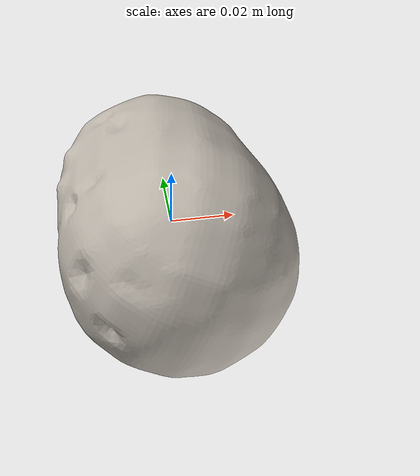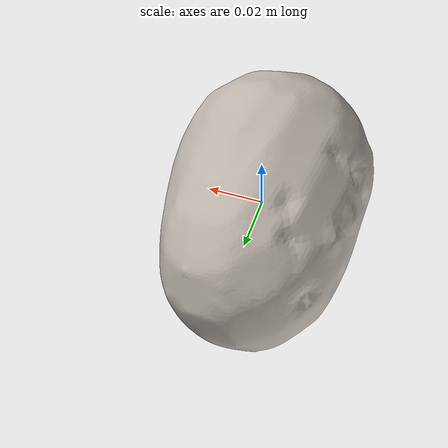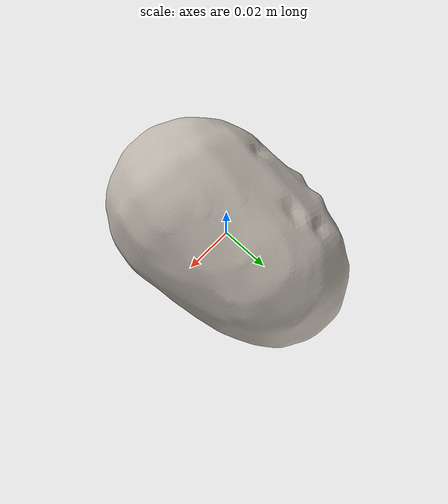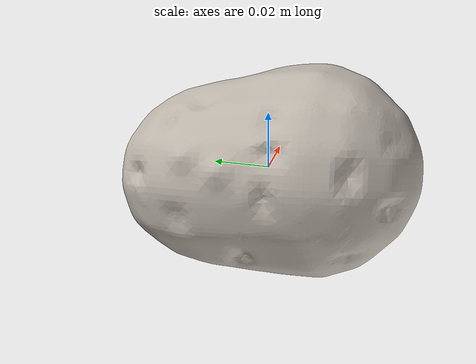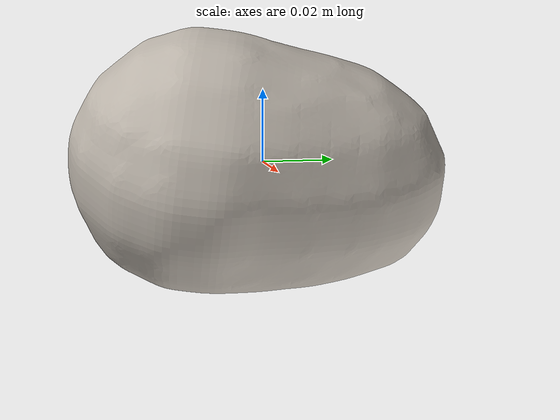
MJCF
<mujoco model="potato_21">
  <asset>
    <mesh file="visual/model_normalized_0.obj" name="model_normalized_0_vis" scale="0.10499999999999997 0.10499999999999997 0.10499999999999997" refquat="0.7071067811865475 0.0 0.0 0.7071067811865476"/>
    <mesh file="collision/model_normalized_collision_22.obj" name="model_normalized_collision_22._coll" scale="0.10499999999999997 0.10499999999999997 0.10499999999999997" refquat="0.7071067811865475 0.0 0.0 0.7071067811865476"/>
    <mesh file="collision/model_normalized_collision_23.obj" name="model_normalized_collision_23._coll" scale="0.10499999999999997 0.10499999999999997 0.10499999999999997" refquat="0.7071067811865475 0.0 0.0 0.7071067811865476"/>
    <mesh file="collision/model_normalized_collision_21.obj" name="model_normalized_collision_21._coll" scale="0.10499999999999997 0.10499999999999997 0.10499999999999997" refquat="0.7071067811865475 0.0 0.0 0.7071067811865476"/>
    <mesh file="collision/model_normalized_collision_20.obj" name="model_normalized_collision_20._coll" scale="0.10499999999999997 0.10499999999999997 0.10499999999999997" refquat="0.7071067811865475 0.0 0.0 0.7071067811865476"/>
    <mesh file="collision/model_normalized_collision_24.obj" name="model_normalized_collision_24._coll" scale="0.10499999999999997 0.10499999999999997 0.10499999999999997" refquat="0.7071067811865475 0.0 0.0 0.7071067811865476"/>
    <mesh file="collision/model_normalized_collision_30.obj" name="model_normalized_collision_30._coll" scale="0.10499999999999997 0.10499999999999997 0.10499999999999997" refquat="0.7071067811865475 0.0 0.0 0.7071067811865476"/>
    <mesh file="collision/model_normalized_collision_18.obj" name="model_normalized_collision_18._coll" scale="0.10499999999999997 0.10499999999999997 0.10499999999999997" refquat="0.7071067811865475 0.0 0.0 0.7071067811865476"/>
    <mesh file="collision/model_normalized_collision_19.obj" name="model_normalized_collision_19._coll" scale="0.10499999999999997 0.10499999999999997 0.10499999999999997" refquat="0.7071067811865475 0.0 0.0 0.7071067811865476"/>
    <mesh file="collision/model_normalized_collision_31.obj" name="model_normalized_collision_31._coll" scale="0.10499999999999997 0.10499999999999997 0.10499999999999997" refquat="0.7071067811865475 0.0 0.0 0.7071067811865476"/>
    <mesh file="collision/model_normalized_collision_25.obj" name="model_normalized_collision_25._coll" scale="0.10499999999999997 0.10499999999999997 0.10499999999999997" refquat="0.7071067811865475 0.0 0.0 0.7071067811865476"/>
    <mesh file="collision/model_normalized_collision_27.obj" name="model_normalized_collision_27._coll" scale="0.10499999999999997 0.10499999999999997 0.10499999999999997" refquat="0.7071067811865475 0.0 0.0 0.7071067811865476"/>
    <mesh file="collision/model_normalized_collision_26.obj" name="model_normalized_collision_26._coll" scale="0.10499999999999997 0.10499999999999997 0.10499999999999997" refquat="0.7071067811865475 0.0 0.0 0.7071067811865476"/>
    <mesh file="collision/model_normalized_collision_9.obj" name="model_normalized_collision_9._coll" scale="0.10499999999999997 0.10499999999999997 0.10499999999999997" refquat="0.7071067811865475 0.0 0.0 0.7071067811865476"/>
    <mesh file="collision/model_normalized_collision_8.obj" name="model_normalized_collision_8._coll" scale="0.10499999999999997 0.10499999999999997 0.10499999999999997" refquat="0.7071067811865475 0.0 0.0 0.7071067811865476"/>
    <mesh file="collision/model_normalized_collision_6.obj" name="model_normalized_collision_6._coll" scale="0.10499999999999997 0.10499999999999997 0.10499999999999997" refquat="0.7071067811865475 0.0 0.0 0.7071067811865476"/>
    <mesh file="collision/model_normalized_collision_7.obj" name="model_normalized_collision_7._coll" scale="0.10499999999999997 0.10499999999999997 0.10499999999999997" refquat="0.7071067811865475 0.0 0.0 0.7071067811865476"/>
    <mesh file="collision/model_normalized_collision_5.obj" name="model_normalized_collision_5._coll" scale="0.10499999999999997 0.10499999999999997 0.10499999999999997" refquat="0.7071067811865475 0.0 0.0 0.7071067811865476"/>
    <mesh file="collision/model_normalized_collision_4.obj" name="model_normalized_collision_4._coll" scale="0.10499999999999997 0.10499999999999997 0.10499999999999997" refquat="0.7071067811865475 0.0 0.0 0.7071067811865476"/>
    <mesh file="collision/model_normalized_collision_0.obj" name="model_normalized_collision_0._coll" scale="0.10499999999999997 0.10499999999999997 0.10499999999999997" refquat="0.7071067811865475 0.0 0.0 0.7071067811865476"/>
    <mesh file="collision/model_normalized_collision_1.obj" name="model_normalized_collision_1._coll" scale="0.10499999999999997 0.10499999999999997 0.10499999999999997" refquat="0.7071067811865475 0.0 0.0 0.7071067811865476"/>
    <mesh file="collision/model_normalized_collision_3.obj" name="model_normalized_collision_3._coll" scale="0.10499999999999997 0.10499999999999997 0.10499999999999997" refquat="0.7071067811865475 0.0 0.0 0.7071067811865476"/>
    <mesh file="collision/model_normalized_collision_2.obj" name="model_normalized_collision_2._coll" scale="0.10499999999999997 0.10499999999999997 0.10499999999999997" refquat="0.7071067811865475 0.0 0.0 0.7071067811865476"/>
    <mesh file="collision/model_normalized_collision_17.obj" name="model_normalized_collision_17._coll" scale="0.10499999999999997 0.10499999999999997 0.10499999999999997" refquat="0.7071067811865475 0.0 0.0 0.7071067811865476"/>
    <mesh file="collision/model_normalized_collision_16.obj" name="model_normalized_collision_16._coll" scale="0.10499999999999997 0.10499999999999997 0.10499999999999997" refquat="0.7071067811865475 0.0 0.0 0.7071067811865476"/>
    <mesh file="collision/model_normalized_collision_28.obj" name="model_normalized_collision_28._coll" scale="0.10499999999999997 0.10499999999999997 0.10499999999999997" refquat="0.7071067811865475 0.0 0.0 0.7071067811865476"/>
    <mesh file="collision/model_normalized_collision_14.obj" name="model_normalized_collision_14._coll" scale="0.10499999999999997 0.10499999999999997 0.10499999999999997" refquat="0.7071067811865475 0.0 0.0 0.7071067811865476"/>
    <mesh file="collision/model_normalized_collision_15.obj" name="model_normalized_collision_15._coll" scale="0.10499999999999997 0.10499999999999997 0.10499999999999997" refquat="0.7071067811865475 0.0 0.0 0.7071067811865476"/>
    <mesh file="collision/model_normalized_collision_29.obj" name="model_normalized_collision_29._coll" scale="0.10499999999999997 0.10499999999999997 0.10499999999999997" refquat="0.7071067811865475 0.0 0.0 0.7071067811865476"/>
    <mesh file="collision/model_normalized_collision_11.obj" name="model_normalized_collision_11._coll" scale="0.10499999999999997 0.10499999999999997 0.10499999999999997" refquat="0.7071067811865475 0.0 0.0 0.7071067811865476"/>
    <mesh file="collision/model_normalized_collision_10.obj" name="model_normalized_collision_10._coll" scale="0.10499999999999997 0.10499999999999997 0.10499999999999997" refquat="0.7071067811865475 0.0 0.0 0.7071067811865476"/>
    <mesh file="collision/model_normalized_collision_12.obj" name="model_normalized_collision_12._coll" scale="0.10499999999999997 0.10499999999999997 0.10499999999999997" refquat="0.7071067811865475 0.0 0.0 0.7071067811865476"/>
    <mesh file="collision/model_normalized_collision_13.obj" name="model_normalized_collision_13._coll" scale="0.10499999999999997 0.10499999999999997 0.10499999999999997" refquat="0.7071067811865475 0.0 0.0 0.7071067811865476"/>
    <texture type="2d" name="image0" file="visual/image0.png"/>
    <material name="material_0.002" texture="image0" specular="0.5" shininess="0.15999998099999999"/>
  </asset>
  <worldbody>
  <body>
      <body name="object">
        <geom solimp="0.998 0.998 0.001" solref="0.001 1" density="100" friction="0.95 0.3 0.1" type="mesh" mesh="model_normalized_0_vis" conaffinity="0" contype="0" group="1" material="material_0.002"/>
        <geom solimp="0.998 0.998 0.001" solref="0.001 1" density="100" friction="0.95 0.3 0.1" type="mesh" mesh="model_normalized_collision_22._coll" group="0" rgba="0.8 0.8 0.8 0.0"/>
        <geom solimp="0.998 0.998 0.001" solref="0.001 1" density="100" friction="0.95 0.3 0.1" type="mesh" mesh="model_normalized_collision_23._coll" group="0" rgba="0.8 0.8 0.8 0.0"/>
        <geom solimp="0.998 0.998 0.001" solref="0.001 1" density="100" friction="0.95 0.3 0.1" type="mesh" mesh="model_normalized_collision_21._coll" group="0" rgba="0.8 0.8 0.8 0.0"/>
        <geom solimp="0.998 0.998 0.001" solref="0.001 1" density="100" friction="0.95 0.3 0.1" type="mesh" mesh="model_normalized_collision_20._coll" group="0" rgba="0.8 0.8 0.8 0.0"/>
        <geom solimp="0.998 0.998 0.001" solref="0.001 1" density="100" friction="0.95 0.3 0.1" type="mesh" mesh="model_normalized_collision_24._coll" group="0" rgba="0.8 0.8 0.8 0.0"/>
        <geom solimp="0.998 0.998 0.001" solref="0.001 1" density="100" friction="0.95 0.3 0.1" type="mesh" mesh="model_normalized_collision_30._coll" group="0" rgba="0.8 0.8 0.8 0.0"/>
        <geom solimp="0.998 0.998 0.001" solref="0.001 1" density="100" friction="0.95 0.3 0.1" type="mesh" mesh="model_normalized_collision_18._coll" group="0" rgba="0.8 0.8 0.8 0.0"/>
        <geom solimp="0.998 0.998 0.001" solref="0.001 1" density="100" friction="0.95 0.3 0.1" type="mesh" mesh="model_normalized_collision_19._coll" group="0" rgba="0.8 0.8 0.8 0.0"/>
        <geom solimp="0.998 0.998 0.001" solref="0.001 1" density="100" friction="0.95 0.3 0.1" type="mesh" mesh="model_normalized_collision_31._coll" group="0" rgba="0.8 0.8 0.8 0.0"/>
        <geom solimp="0.998 0.998 0.001" solref="0.001 1" density="100" friction="0.95 0.3 0.1" type="mesh" mesh="model_normalized_collision_25._coll" group="0" rgba="0.8 0.8 0.8 0.0"/>
        <geom solimp="0.998 0.998 0.001" solref="0.001 1" density="100" friction="0.95 0.3 0.1" type="mesh" mesh="model_normalized_collision_27._coll" group="0" rgba="0.8 0.8 0.8 0.0"/>
        <geom solimp="0.998 0.998 0.001" solref="0.001 1" density="100" friction="0.95 0.3 0.1" type="mesh" mesh="model_normalized_collision_26._coll" group="0" rgba="0.8 0.8 0.8 0.0"/>
        <geom solimp="0.998 0.998 0.001" solref="0.001 1" density="100" friction="0.95 0.3 0.1" type="mesh" mesh="model_normalized_collision_9._coll" group="0" rgba="0.8 0.8 0.8 0.0"/>
        <geom solimp="0.998 0.998 0.001" solref="0.001 1" density="100" friction="0.95 0.3 0.1" type="mesh" mesh="model_normalized_collision_8._coll" group="0" rgba="0.8 0.8 0.8 0.0"/>
        <geom solimp="0.998 0.998 0.001" solref="0.001 1" density="100" friction="0.95 0.3 0.1" type="mesh" mesh="model_normalized_collision_6._coll" group="0" rgba="0.8 0.8 0.8 0.0"/>
        <geom solimp="0.998 0.998 0.001" solref="0.001 1" density="100" friction="0.95 0.3 0.1" type="mesh" mesh="model_normalized_collision_7._coll" group="0" rgba="0.8 0.8 0.8 0.0"/>
        <geom solimp="0.998 0.998 0.001" solref="0.001 1" density="100" friction="0.95 0.3 0.1" type="mesh" mesh="model_normalized_collision_5._coll" group="0" rgba="0.8 0.8 0.8 0.0"/>
        <geom solimp="0.998 0.998 0.001" solref="0.001 1" density="100" friction="0.95 0.3 0.1" type="mesh" mesh="model_normalized_collision_4._coll" group="0" rgba="0.8 0.8 0.8 0.0"/>
        <geom solimp="0.998 0.998 0.001" solref="0.001 1" density="100" friction="0.95 0.3 0.1" type="mesh" mesh="model_normalized_collision_0._coll" group="0" rgba="0.8 0.8 0.8 0.0"/>
        <geom solimp="0.998 0.998 0.001" solref="0.001 1" density="100" friction="0.95 0.3 0.1" type="mesh" mesh="model_normalized_collision_1._coll" group="0" rgba="0.8 0.8 0.8 0.0"/>
        <geom solimp="0.998 0.998 0.001" solref="0.001 1" density="100" friction="0.95 0.3 0.1" type="mesh" mesh="model_normalized_collision_3._coll" group="0" rgba="0.8 0.8 0.8 0.0"/>
        <geom solimp="0.998 0.998 0.001" solref="0.001 1" density="100" friction="0.95 0.3 0.1" type="mesh" mesh="model_normalized_collision_2._coll" group="0" rgba="0.8 0.8 0.8 0.0"/>
        <geom solimp="0.998 0.998 0.001" solref="0.001 1" density="100" friction="0.95 0.3 0.1" type="mesh" mesh="model_normalized_collision_17._coll" group="0" rgba="0.8 0.8 0.8 0.0"/>
        <geom solimp="0.998 0.998 0.001" solref="0.001 1" density="100" friction="0.95 0.3 0.1" type="mesh" mesh="model_normalized_collision_16._coll" group="0" rgba="0.8 0.8 0.8 0.0"/>
        <geom solimp="0.998 0.998 0.001" solref="0.001 1" density="100" friction="0.95 0.3 0.1" type="mesh" mesh="model_normalized_collision_28._coll" group="0" rgba="0.8 0.8 0.8 0.0"/>
        <geom solimp="0.998 0.998 0.001" solref="0.001 1" density="100" friction="0.95 0.3 0.1" type="mesh" mesh="model_normalized_collision_14._coll" group="0" rgba="0.8 0.8 0.8 0.0"/>
        <geom solimp="0.998 0.998 0.001" solref="0.001 1" density="100" friction="0.95 0.3 0.1" type="mesh" mesh="model_normalized_collision_15._coll" group="0" rgba="0.8 0.8 0.8 0.0"/>
        <geom solimp="0.998 0.998 0.001" solref="0.001 1" density="100" friction="0.95 0.3 0.1" type="mesh" mesh="model_normalized_collision_29._coll" group="0" rgba="0.8 0.8 0.8 0.0"/>
        <geom solimp="0.998 0.998 0.001" solref="0.001 1" density="100" friction="0.95 0.3 0.1" type="mesh" mesh="model_normalized_collision_11._coll" group="0" rgba="0.8 0.8 0.8 0.0"/>
        <geom solimp="0.998 0.998 0.001" solref="0.001 1" density="100" friction="0.95 0.3 0.1" type="mesh" mesh="model_normalized_collision_10._coll" group="0" rgba="0.8 0.8 0.8 0.0"/>
        <geom solimp="0.998 0.998 0.001" solref="0.001 1" density="100" friction="0.95 0.3 0.1" type="mesh" mesh="model_normalized_collision_12._coll" group="0" rgba="0.8 0.8 0.8 0.0"/>
        <geom solimp="0.998 0.998 0.001" solref="0.001 1" density="100" friction="0.95 0.3 0.1" type="mesh" mesh="model_normalized_collision_13._coll" group="0" rgba="0.8 0.8 0.8 0.0"/>
      </body>
      <site rgba="0 0 0 0" size="0.005" pos="-0.00020852580000000086 9.509325000001537e-06 -0.036125036849999986" name="bottom_site"/>
      <site rgba="0 0 0 0" size="0.005" pos="-0.00020852580000000086 9.509325000001537e-06 0.03566854304999999" name="top_site"/>
      <site rgba="0 0 0 0" size="0.005" pos="0.035024251499999985 0.05149194329999999 -0.0002282468999999985" name="horizontal_radius_site"/>
    </body>
    </worldbody>
</mujoco>
